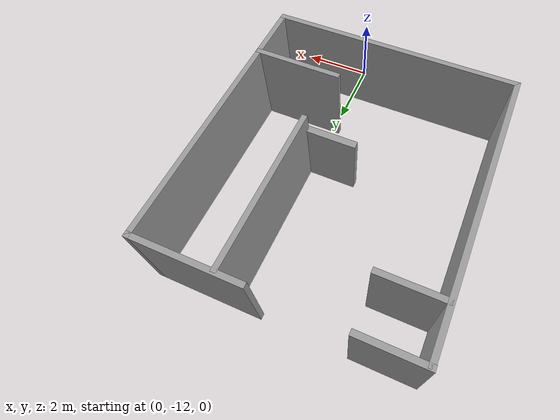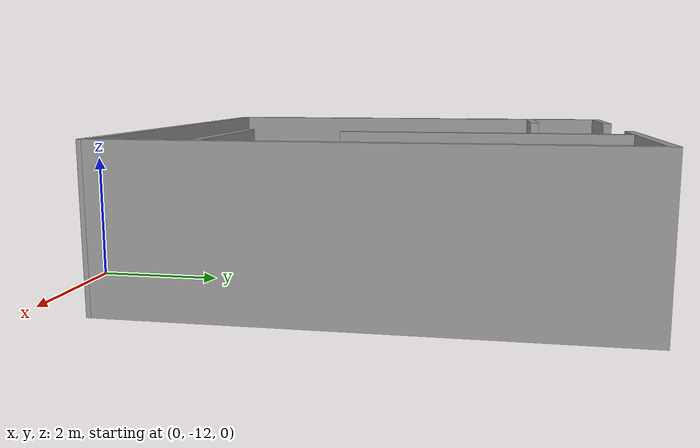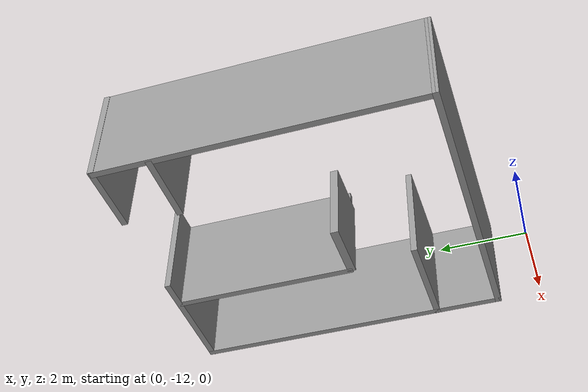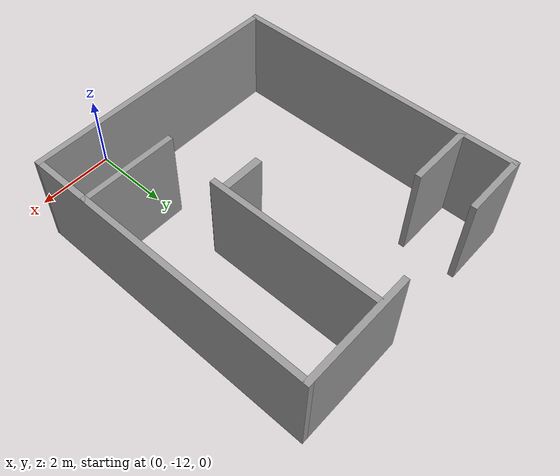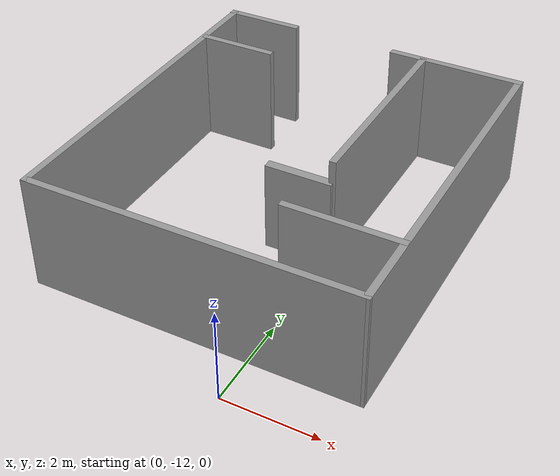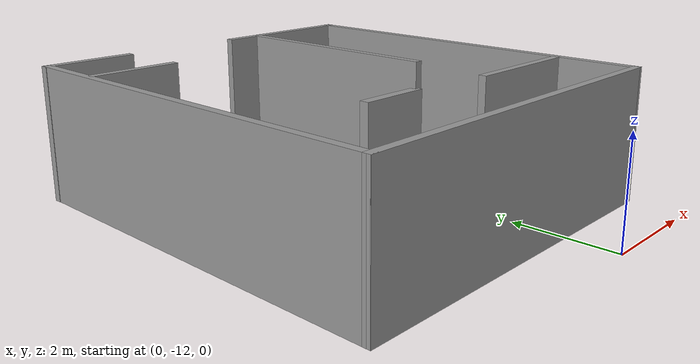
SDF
<?xml version='1.0'?>
<sdf version='1.7'>
  <model name='world'>
    <pose>-1.21368 -5.52266 0 0 -0 0</pose>
    <link name='Door_0'>
      <collision name='Door_0_Collision'>
        <geometry>
          <box>
            <size>1.45 0.2 2</size>
          </box>
        </geometry>
        <pose>0 0 1 0 -0 0</pose>
      </collision>
      <visual name='Door_0_Visual'>
        <pose>0 0 1 0 -0 0</pose>
        <geometry>
          <box>
            <size>1.45 0.2 2</size>
          </box>
        </geometry>
        <material>
          <script>
            <uri>file://media/materials/scripts/gazebo.material</uri>
            <name>Gazebo/Grey</name>
          </script>
        </material>
      </visual>
      <pose>0.593685 -2.27734 0 0 -0 0</pose>
    </link>
    <link name='Wall_1'>
      <collision name='Wall_1_Collision'>
        <geometry>
          <box>
            <size>7.75 0.15 2.5</size>
          </box>
        </geometry>
        <pose>0 0 1.25 0 -0 0</pose>
      </collision>
      <visual name='Wall_1_Visual'>
        <pose>0 0 1.25 0 -0 0</pose>
        <geometry>
          <box>
            <size>7.75 0.15 2.5</size>
          </box>
        </geometry>
        <material>
          <script>
            <uri>file://media/materials/scripts/gazebo.material</uri>
            <name>Gazebo/Grey</name>
          </script>
          <ambient>1 1 1 1</ambient>
        </material>
        <meta>
          <layer>0</layer>
        </meta>
      </visual>
      <pose>3.46601 -1.61689 0 0 -0 -1.5708</pose>
    </link>
    <link name='Wall_11'>
      <collision name='Wall_11_Collision'>
        <geometry>
          <box>
            <size>1.75 0.15 2.5</size>
          </box>
        </geometry>
        <pose>0 0 1.25 0 -0 0</pose>
      </collision>
      <visual name='Wall_11_Visual'>
        <pose>0 0 1.25 0 -0 0</pose>
        <geometry>
          <box>
            <size>1.75 0.15 2.5</size>
          </box>
        </geometry>
        <material>
          <script>
            <uri>file://media/materials/scripts/gazebo.material</uri>
            <name>Gazebo/Grey</name>
          </script>
          <ambient>1 1 1 1</ambient>
        </material>
        <meta>
          <layer>0</layer>
        </meta>
      </visual>
      <pose>-2.60631 0.852664 0 0 -0 0</pose>
    </link>
    <link name='Wall_13'>
      <collision name='Wall_13_Collision'>
        <geometry>
          <box>
            <size>4.5 0.15 2.5</size>
          </box>
        </geometry>
        <pose>0 0 1.25 0 -0 0</pose>
      </collision>
      <visual name='Wall_13_Visual'>
        <pose>0 0 1.25 0 -0 0</pose>
        <geometry>
          <box>
            <size>4.5 0.15 2.5</size>
          </box>
        </geometry>
        <material>
          <script>
            <uri>file://media/materials/scripts/gazebo.material</uri>
            <name>Gazebo/Grey</name>
          </script>
          <ambient>1 1 1 1</ambient>
        </material>
        <meta>
          <layer>0</layer>
        </meta>
      </visual>
      <pose>1.30368 -0.052335 0 0 -0 -1.5708</pose>
    </link>
    <link name='Wall_15'>
      <collision name='Wall_15_Collision'>
        <geometry>
          <box>
            <size>2.5 0.15 2.5</size>
          </box>
        </geometry>
        <pose>0 0 1.25 0 -0 0</pose>
      </collision>
      <visual name='Wall_15_Visual'>
        <pose>0 0 1.25 0 -0 0</pose>
        <geometry>
          <box>
            <size>2.5 0.15 2.5</size>
          </box>
        </geometry>
        <material>
          <script>
            <uri>file://media/materials/scripts/gazebo.material</uri>
            <name>Gazebo/Grey</name>
          </script>
          <ambient>1 1 1 1</ambient>
        </material>
        <meta>
          <layer>0</layer>
        </meta>
      </visual>
      <pose>2.27868 -3.87733 0 0 -0 3.14159</pose>
    </link>
    <link name='Wall_2'>
      <collision name='Wall_2_Collision'>
        <geometry>
          <box>
            <size>7.07235 0.15 2.5</size>
          </box>
        </geometry>
        <pose>0 0 1.25 0 -0 0</pose>
      </collision>
      <visual name='Wall_2_Visual'>
        <pose>0 0 1.25 0 -0 0</pose>
        <geometry>
          <box>
            <size>7.07235 0.15 2.5</size>
          </box>
        </geometry>
        <material>
          <script>
            <uri>file://media/materials/scripts/gazebo.material</uri>
            <name>Gazebo/Grey</name>
          </script>
          <ambient>1 1 1 1</ambient>
        </material>
        <meta>
          <layer>0</layer>
        </meta>
      </visual>
      <pose>0.004845 -5.43211 0 0 -0 -3.1372</pose>
    </link>
    <link name='Wall_3'>
      <collision name='Wall_3_Collision'>
        <geometry>
          <box>
            <size>7.75 0.15 2.5</size>
          </box>
        </geometry>
        <pose>0 0 1.25 0 -0 0</pose>
      </collision>
      <visual name='Wall_3_Visual'>
        <pose>0 0 1.25 0 -0 0</pose>
        <geometry>
          <box>
            <size>7.75 0.15 2.5</size>
          </box>
        </geometry>
        <material>
          <script>
            <uri>file://media/materials/scripts/gazebo.material</uri>
            <name>Gazebo/Grey</name>
          </script>
          <ambient>1 1 1 1</ambient>
        </material>
        <meta>
          <layer>0</layer>
        </meta>
      </visual>
      <pose>-3.45632 -1.63733 0 0 -0 1.5708</pose>
    </link>
    <link name='Wall_5'>
      <collision name='Wall_5_Collision'>
        <geometry>
          <box>
            <size>3 0.15 2.5</size>
          </box>
        </geometry>
        <pose>0 0 1.25 0 -0 0</pose>
      </collision>
      <visual name='Wall_5_Visual'>
        <pose>0 0 1.25 0 -0 0</pose>
        <geometry>
          <box>
            <size>3 0.15 2.5</size>
          </box>
        </geometry>
        <material>
          <script>
            <uri>file://media/materials/scripts/gazebo.material</uri>
            <name>Gazebo/Grey</name>
          </script>
          <ambient>1 1 1 1</ambient>
        </material>
        <meta>
          <layer>0</layer>
        </meta>
      </visual>
      <pose>2.04101 2.18311 0 0 -0 3.14159</pose>
    </link>
    <link name='Wall_7'>
      <collision name='Wall_7_Collision'>
        <geometry>
          <box>
            <size>1.75 0.15 2.5</size>
          </box>
        </geometry>
        <pose>0 0 1.25 0 -0 0</pose>
      </collision>
      <visual name='Wall_7_Visual'>
        <pose>0 0 1.25 0 -0 0</pose>
        <geometry>
          <box>
            <size>1.75 0.15 2.5</size>
          </box>
        </geometry>
        <material>
          <script>
            <uri>file://media/materials/scripts/gazebo.material</uri>
            <name>Gazebo/Grey</name>
          </script>
          <ambient>1 1 1 1</ambient>
        </material>
        <meta>
          <layer>0</layer>
        </meta>
      </visual>
      <pose>-2.66632 2.19266 0 0 -0 0</pose>
    </link>
    <static>1</static>
  </model>
</sdf>
